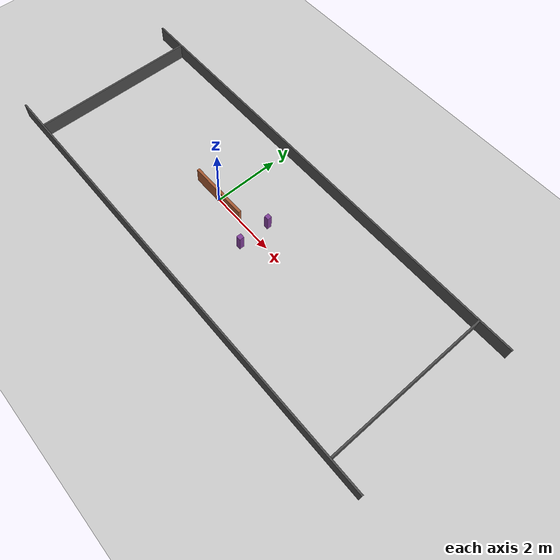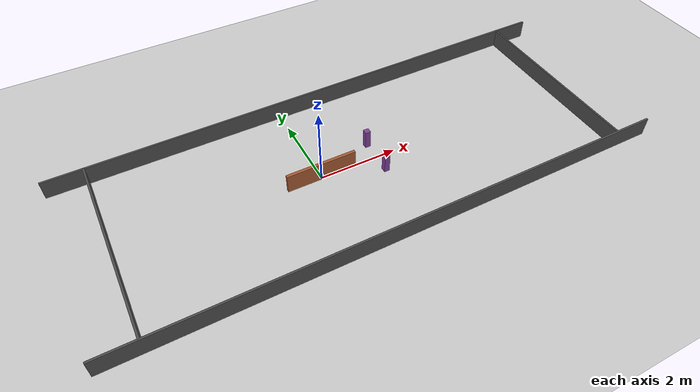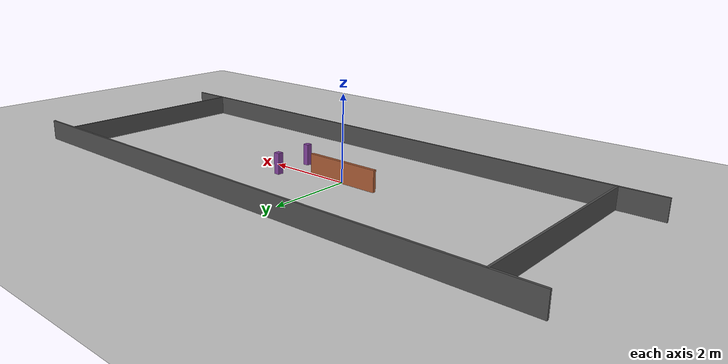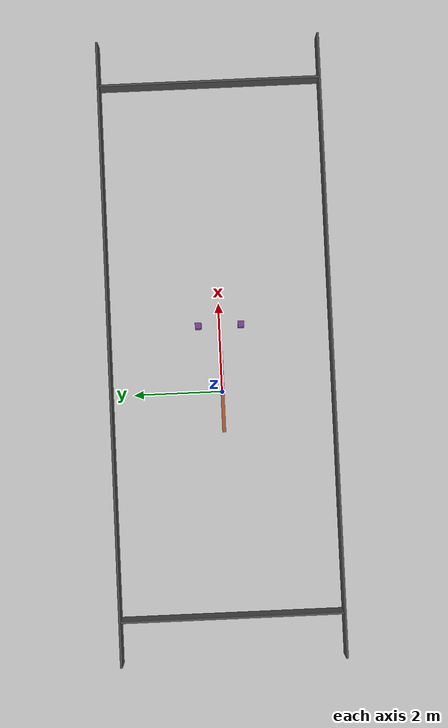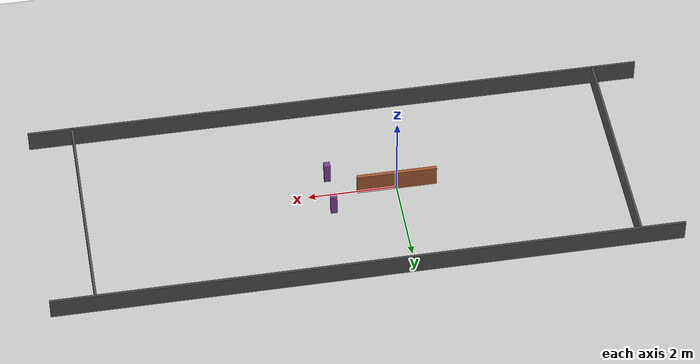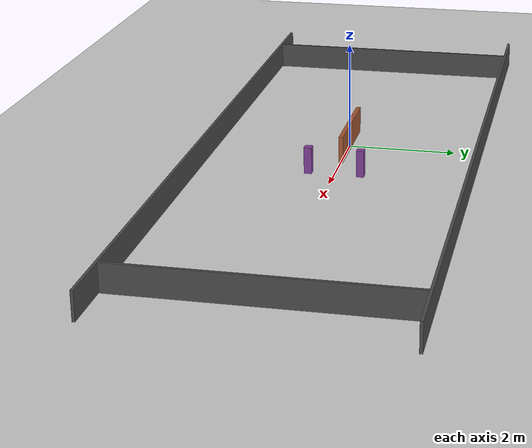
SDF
<?xml version="1.0" ?>
<sdf version="1.6">
  <world name="curriculum_s3_narrow">
    <plugin name="gazebo_ros_state" filename="libgazebo_ros_state.so">
      <update_rate>50.0</update_rate>
    </plugin>
    <include>
      <uri>model://sun</uri>
    </include>
    <include>
      <uri>model://ground_plane</uri>
    </include>
    <model name="outer_bottom">
      <static>true</static>
      <pose>1.0 -2.5 0.25 0 0 0</pose>
      <link name="link">
        <collision name="c">
          <geometry><box><size>14.0 0.05 0.5</size></box></geometry>
        </collision>
        <visual name="v">
          <geometry><box><size>14.0 0.05 0.5</size></box></geometry>
          <material>
            <ambient>0.3 0.3 0.3 1</ambient>
            <diffuse>0.3 0.3 0.3 1</diffuse>
          </material>
        </visual>
      </link>
    </model>
    <model name="outer_top">
      <static>true</static>
      <pose>1.0 2.5 0.25 0 0 0</pose>
      <link name="link">
        <collision name="c">
          <geometry><box><size>14.0 0.05 0.5</size></box></geometry>
        </collision>
        <visual name="v">
          <geometry><box><size>14.0 0.05 0.5</size></box></geometry>
          <material>
            <ambient>0.3 0.3 0.3 1</ambient>
            <diffuse>0.3 0.3 0.3 1</diffuse>
          </material>
        </visual>
      </link>
    </model>
    <model name="outer_left">
      <static>true</static>
      <pose>-5.0 0.0 0.25 0 0 0</pose>
      <link name="link">
        <collision name="c">
          <geometry><box><size>0.05 5.0 0.5</size></box></geometry>
        </collision>
        <visual name="v">
          <geometry><box><size>0.05 5.0 0.5</size></box></geometry>
          <material>
            <ambient>0.3 0.3 0.3 1</ambient>
            <diffuse>0.3 0.3 0.3 1</diffuse>
          </material>
        </visual>
      </link>
    </model>
    <model name="outer_right">
      <static>true</static>
      <pose>7.0 0.0 0.25 0 0 0</pose>
      <link name="link">
        <collision name="c">
          <geometry><box><size>0.05 5.0 0.5</size></box></geometry>
        </collision>
        <visual name="v">
          <geometry><box><size>0.05 5.0 0.5</size></box></geometry>
          <material>
            <ambient>0.3 0.3 0.3 1</ambient>
            <diffuse>0.3 0.3 0.3 1</diffuse>
          </material>
        </visual>
      </link>
    </model>
    <model name="center_obstacle">
      <static>true</static>
      <pose>0.0 0.0 0.25 0 0 0</pose>
      <link name="link">
        <collision name="c">
          <geometry><box><size>1.8 0.08 0.5</size></box></geometry>
        </collision>
        <visual name="v">
          <geometry><box><size>1.8 0.08 0.5</size></box></geometry>
          <material>
            <ambient>0.65 0.35 0.2 1</ambient>
            <diffuse>0.65 0.35 0.2 1</diffuse>
          </material>
        </visual>
      </link>
    </model>
    <!-- 窄门：两根立柱，中间约 0.85m 间隙 -->
    <model name="gate_pillar_north">
      <static>true</static>
      <pose>1.5 0.48 0.25 0 0 0</pose>
      <link name="link">
        <collision name="c">
          <geometry><box><size>0.14 0.14 0.5</size></box></geometry>
        </collision>
        <visual name="v">
          <geometry><box><size>0.14 0.14 0.5</size></box></geometry>
          <material>
            <ambient>0.5 0.25 0.6 1</ambient>
            <diffuse>0.5 0.25 0.6 1</diffuse>
          </material>
        </visual>
      </link>
    </model>
    <model name="gate_pillar_south">
      <static>true</static>
      <pose>1.5 -0.48 0.25 0 0 0</pose>
      <link name="link">
        <collision name="c">
          <geometry><box><size>0.14 0.14 0.5</size></box></geometry>
        </collision>
        <visual name="v">
          <geometry><box><size>0.14 0.14 0.5</size></box></geometry>
          <material>
            <ambient>0.5 0.25 0.6 1</ambient>
            <diffuse>0.5 0.25 0.6 1</diffuse>
          </material>
        </visual>
      </link>
    </model>
  </world>
</sdf>
